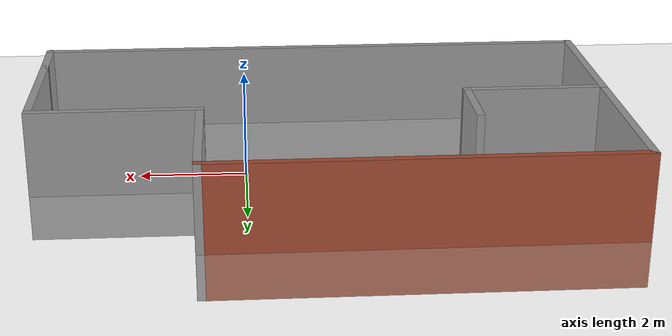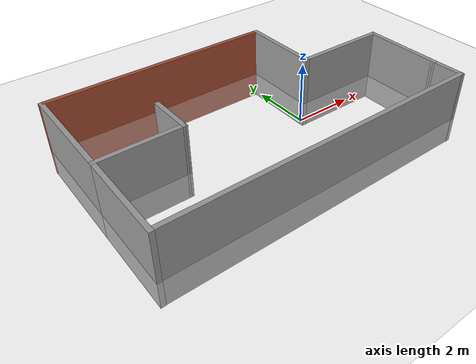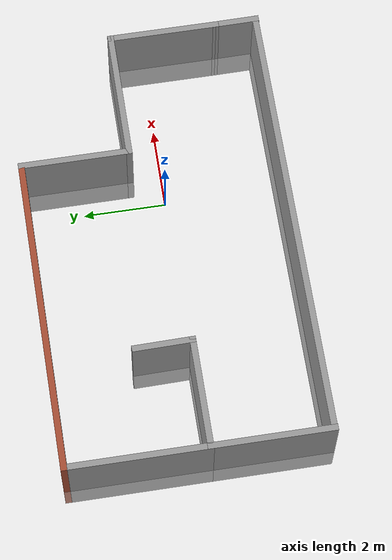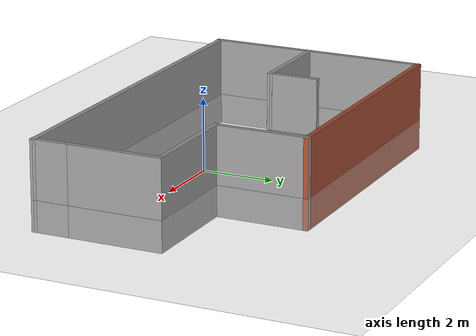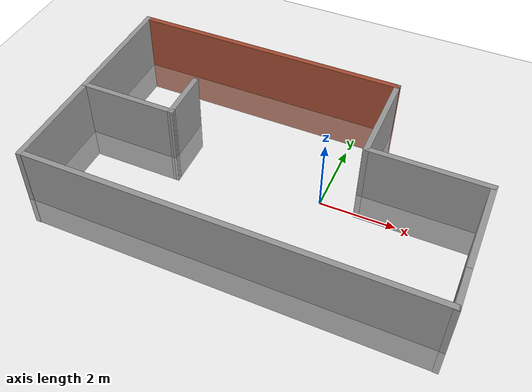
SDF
<sdf version="1.7">
 <world name="default">
  <light name="sun" type="directional">
   <pose>0 0 10 0 -0 0</pose>
   <diffuse>0.8 0.8 0.8 1</diffuse>
   <specular>0.2 0.2 0.2 1</specular>
   <attenuation>
    <range>1000</range>
    <constant>0.9</constant>
    <linear>0.01</linear>
    <quadratic>0.001</quadratic>
   </attenuation>
   <direction>-0.5 0.1 -0.9</direction>
   <spot><inner_angle>0</inner_angle><outer_angle>0</outer_angle><falloff>0</falloff></spot>
  </light>
  <model name="ground_plane">
   <static>1</static>
   <link name="link">
    <collision name="collision">
     <geometry><plane><normal>0 0 1</normal><size>100 100</size></plane></geometry>
     <surface>
      <contact><collide_bitmask>65535</collide_bitmask></contact>
      <friction><ode><mu>100</mu><mu2>50</mu2></ode></friction>
     </surface>
    </collision>
    <visual name="visual">
     <cast_shadows>0</cast_shadows>
     <geometry><plane><normal>0 0 1</normal><size>100 100</size></plane></geometry>
     <material>
      <script><uri>file://media/materials/scripts/gazebo.material</uri><name>Gazebo/Grey</name></script>
     </material>
    </visual>
   </link>
  </model>
  <gravity>0 0 -9.8</gravity>
  <magnetic_field>6e-06 2.3e-05 -4.2e-05</magnetic_field>
  <atmosphere type="adiabatic"/>
  <physics type="ode">
   <max_step_size>0.001</max_step_size>
   <real_time_factor>1</real_time_factor>
   <real_time_update_rate>1000</real_time_update_rate>
  </physics>
  <scene><ambient>0.4 0.4 0.4 1</ambient><background>0.7 0.7 0.7 1</background><shadows>1</shadows></scene>
  <spherical_coordinates>
   <surface_model>EARTH_WGS84</surface_model>
   <latitude_deg>0</latitude_deg>
   <longitude_deg>0</longitude_deg>
   <elevation>0</elevation>
   <heading_deg>0</heading_deg>
  </spherical_coordinates>
  <model name="my_home">
   <pose>-1.42799 0.516245 -0.881505 0 -0 0</pose>
   <link name="Wall_12">
    <collision name="Wall_12_Collision">
     <geometry><box><size>2.75 0.15 2.5</size></box></geometry>
     <pose>0 0 1.25 0 -0 0</pose>
    </collision>
    <visual name="Wall_12_Visual">
     <pose>0 0 1.25 0 -0 0</pose>
     <geometry><box><size>2.75 0.15 2.5</size></box></geometry>
     <material>
      <script><uri>file://media/materials/scripts/gazebo.material</uri><name>Gazebo/Grey</name></script>
      <ambient>1 1 1 1</ambient>
     </material>
     <meta><layer>0</layer></meta>
    </visual>
    <pose>5.34463 -1.06713 0 0 -0 -1.5708</pose>
   </link>
   <link name="Wall_13">
    <collision name="Wall_13_Collision">
     <geometry><box><size>1.15005 0.15 2.5</size></box></geometry>
     <pose>0 0 1.25 0 -0 0</pose>
    </collision>
    <visual name="Wall_13_Visual">
     <pose>0 0 1.25 0 -0 0</pose>
     <geometry><box><size>1.15005 0.15 2.5</size></box></geometry>
     <material>
      <script><uri>file://media/materials/scripts/gazebo.material</uri><name>Gazebo/Grey</name></script>
      <ambient>1 1 1 1</ambient>
     </material>
     <meta><layer>0</layer></meta>
    </visual>
    <pose>5.34963 -2.86713 0 0 -0 -1.5608</pose>
   </link>
   <link name="Wall_14">
    <collision name="Wall_14_Collision">
     <geometry><box><size>10.75 0.15 2.5</size></box></geometry>
     <pose>0 0 1.25 0 -0 0</pose>
    </collision>
    <visual name="Wall_14_Visual">
     <pose>0 0 1.25 0 -0 0</pose>
     <geometry><box><size>10.75 0.15 2.5</size></box></geometry>
     <material>
      <script><uri>file://media/materials/scripts/gazebo.material</uri><name>Gazebo/Grey</name></script>
      <ambient>1 1 1 1</ambient>
     </material>
     <meta><layer>0</layer></meta>
    </visual>
    <pose>0.054627 -3.35713 0 0 -0 3.14159</pose>
   </link>
   <link name="Wall_17">
    <collision name="Wall_17_Collision">
     <geometry><box><size>3 0.15 2.5</size></box></geometry>
     <pose>0 0 1.25 0 -0 0</pose>
    </collision>
    <visual name="Wall_17_Visual">
     <pose>0 0 1.25 0 -0 0</pose>
     <geometry><box><size>3 0.15 2.5</size></box></geometry>
     <material>
      <script><uri>file://media/materials/scripts/gazebo.material</uri><name>Gazebo/Grey</name></script>
      <ambient>1 1 1 1</ambient>
     </material>
     <meta><layer>0</layer></meta>
    </visual>
    <pose>-5.35537 -1.94213 0 0 -0 -1.5708</pose>
   </link>
   <link name="Wall_2">
    <collision name="Wall_2_Collision">
     <geometry><box><size>2.75 0.15 2.5</size></box></geometry>
     <pose>0 0 1.25 0 -0 0</pose>
    </collision>
    <visual name="Wall_2_Visual">
     <pose>0 0 1.25 0 -0 0</pose>
     <geometry><box><size>2.75 0.15 2.5</size></box></geometry>
     <material>
      <script><uri>file://media/materials/scripts/gazebo.material</uri><name>Gazebo/Grey</name></script>
      <ambient>1 1 1 1</ambient>
     </material>
     <meta><layer>0</layer></meta>
    </visual>
    <pose>2.24463 1.53287 0 0 -0 1.5708</pose>
   </link>
   <link name="Wall_3">
    <collision name="Wall_3_Collision">
     <geometry><box><size>7.75 0.15 2.5</size></box></geometry>
     <pose>0 0 1.25 0 -0 0</pose>
    </collision>
    <visual name="Wall_3_Visual">
     <pose>0 0 1.25 0 -0 0</pose>
     <geometry><box><size>7.75 0.15 2.5</size></box></geometry>
     <material>
      <script><uri>file://media/materials/scripts/gazebo.material</uri><name>Gazebo/Bricks</name></script>
      <ambient>1 1 1 1</ambient>
     </material>
     <meta><layer>0</layer></meta>
    </visual>
    <pose>-1.55537 2.83287 0 0 -0 3.14159</pose>
   </link>
   <link name="Wall_4">
    <collision name="Wall_4_Collision">
     <geometry><box><size>3.5 0.15 2.5</size></box></geometry>
     <pose>0 0 1.25 0 -0 0</pose>
    </collision>
    <visual name="Wall_4_Visual">
     <pose>0 0 1.25 0 -0 0</pose>
     <geometry><box><size>3.5 0.15 2.5</size></box></geometry>
     <material>
      <script><uri>file://media/materials/scripts/gazebo.material</uri><name>Gazebo/Grey</name></script>
      <ambient>1 1 1 1</ambient>
     </material>
     <meta><layer>0</layer></meta>
    </visual>
    <pose>-5.35537 1.15787 0 0 -0 -1.5708</pose>
   </link>
   <link name="Wall_5">
    <collision name="Wall_5_Collision">
     <geometry><box><size>2.75 0.15 2.5</size></box></geometry>
     <pose>0 0 1.25 0 -0 0</pose>
    </collision>
    <visual name="Wall_5_Visual">
     <pose>0 0 1.25 0 -0 0</pose>
     <geometry><box><size>2.75 0.15 2.5</size></box></geometry>
     <material>
      <script><uri>file://media/materials/scripts/gazebo.material</uri><name>Gazebo/Grey</name></script>
      <ambient>1 1 1 1</ambient>
     </material>
     <meta><layer>0</layer></meta>
    </visual>
    <pose>-4.05537 -0.517127 0 0 -0 0</pose>
   </link>
   <link name="Wall_6">
    <collision name="Wall_6_Collision">
     <geometry><box><size>1.5 0.15 2.5</size></box></geometry>
     <pose>0 0 1.25 0 -0 0</pose>
    </collision>
    <visual name="Wall_6_Visual">
     <pose>0 0 1.25 0 -0 0</pose>
     <geometry><box><size>1.5 0.15 2.5</size></box></geometry>
     <material>
      <script><uri>file://media/materials/scripts/gazebo.material</uri><name>Gazebo/Grey</name></script>
      <ambient>1 1 1 1</ambient>
     </material>
     <meta><layer>0</layer></meta>
    </visual>
    <pose>-2.76537 0.157873 0 0 -0 1.58561</pose>
   </link>
   <link name="Wall_9">
    <collision name="Wall_9_Collision">
     <geometry><box><size>3.25 0.15 2.5</size></box></geometry>
     <pose>0 0 1.25 0 -0 0</pose>
    </collision>
    <visual name="Wall_9_Visual">
     <pose>0 0 1.25 0 -0 0</pose>
     <geometry><box><size>3.25 0.15 2.5</size></box></geometry>
     <material>
      <script><uri>file://media/materials/scripts/gazebo.material</uri><name>Gazebo/Grey</name></script>
      <ambient>1 1 1 1</ambient>
     </material>
     <meta><layer>0</layer></meta>
    </visual>
    <pose>3.79463 0.232873 0 0 -0 0</pose>
   </link>
   <static>1</static>
  </model>
 </world>
</sdf>
